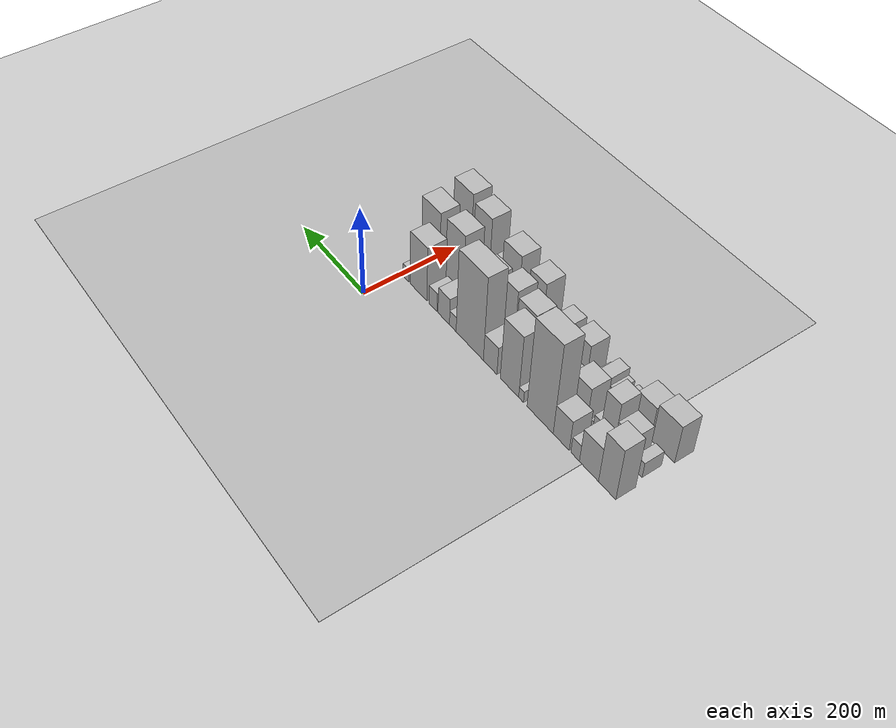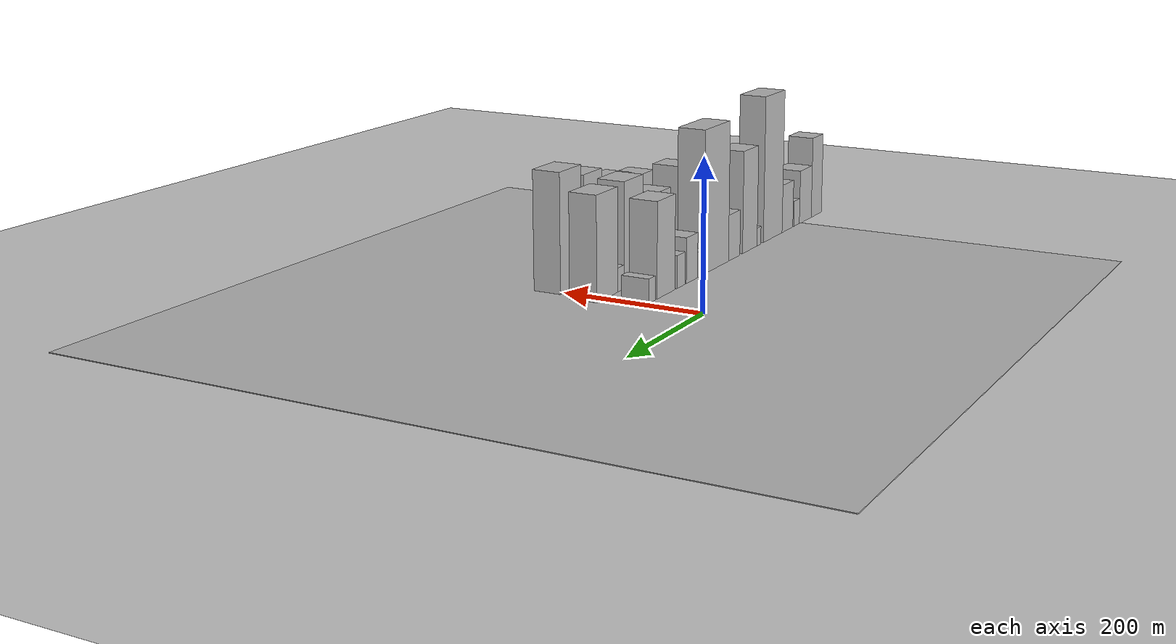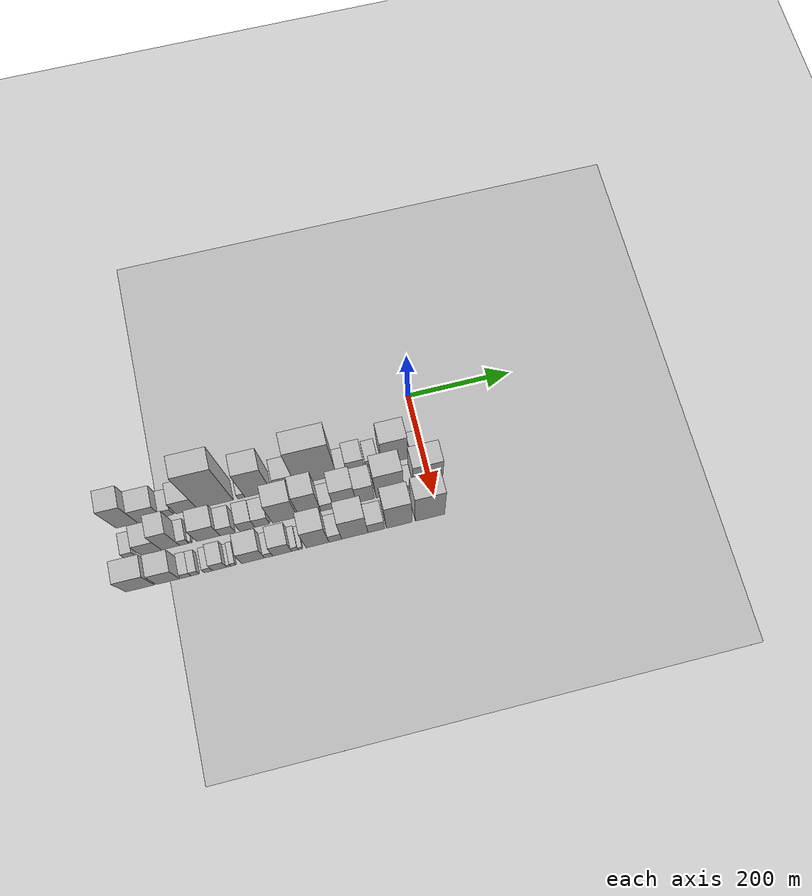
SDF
<sdf version="1.6">
 <world name="default">
  <include><name>ground_plane_1</name><uri>model://HANNAS_ground_plane</uri></include>
  <include>
   <name>ground_plane_2</name>
   <uri>model://HANNAS_ground_plane</uri>
   <pose>100 0 0  0 0 0</pose>
  </include>
  <model name="building_1">
   <static>1</static>
   <pose>100.0000 -559.7315 0 0.000000 0.000000 0.000000</pose>
   <link name="link">
    <pose>0 0 61.50 0 0 0</pose>
    <collision name="collision"><geometry><box><size>40.0000 40.5371 123.0000</size></box></geometry></collision>
    <visual name="visual">
     <cast_shadows>0</cast_shadows>
     <geometry><box><size>40.0000 40.5371 123.0000</size></box></geometry>
     <material>
      <script>
       <uri>model://HANNAS_wall/materials/scripts</uri>
       <uri>model://HANNAS_wall/materials/textures</uri>
       <name>vrc/HANNAS_wall</name>
      </script>
     </material>
    </visual>
   </link>
  </model>
  <model name="building_2">
   <static>1</static>
   <pose>100.0000 -516.5617 0 0.000000 0.000000 0.000000</pose>
   <link name="link">
    <pose>0 0 40.50 0 0 0</pose>
    <collision name="collision"><geometry><box><size>40.0000 45.8025 81.0000</size></box></geometry></collision>
    <visual name="visual">
     <cast_shadows>0</cast_shadows>
     <geometry><box><size>40.0000 45.8025 81.0000</size></box></geometry>
     <material>
      <script>
       <uri>model://HANNAS_wall/materials/scripts</uri>
       <uri>model://HANNAS_wall/materials/textures</uri>
       <name>vrc/HANNAS_wall</name>
      </script>
     </material>
    </visual>
   </link>
  </model>
  <model name="building_3">
   <static>1</static>
   <pose>100.0000 -483.2042 0 0.000000 0.000000 0.000000</pose>
   <link name="link">
    <pose>0 0 19.50 0 0 0</pose>
    <collision name="collision"><geometry><box><size>40.0000 20.9124 39.0000</size></box></geometry></collision>
    <visual name="visual">
     <cast_shadows>0</cast_shadows>
     <geometry><box><size>40.0000 20.9124 39.0000</size></box></geometry>
     <material>
      <script>
       <uri>model://HANNAS_wall/materials/scripts</uri>
       <uri>model://HANNAS_wall/materials/textures</uri>
       <name>vrc/HANNAS_wall</name>
      </script>
     </material>
    </visual>
   </link>
  </model>
  <model name="building_4">
   <static>1</static>
   <pose>100.0000 -448.7653 0 0.000000 0.000000 0.000000</pose>
   <link name="link">
    <pose>0 0 36.00 0 0 0</pose>
    <collision name="collision"><geometry><box><size>40.0000 39.9656 72.0000</size></box></geometry></collision>
    <visual name="visual">
     <cast_shadows>0</cast_shadows>
     <geometry><box><size>40.0000 39.9656 72.0000</size></box></geometry>
     <material>
      <script>
       <uri>model://HANNAS_wall/materials/scripts</uri>
       <uri>model://HANNAS_wall/materials/textures</uri>
       <name>vrc/HANNAS_wall</name>
      </script>
     </material>
    </visual>
   </link>
  </model>
  <model name="building_5">
   <static>1</static>
   <pose>100.0000 -395.1472 0 0.000000 0.000000 0.000000</pose>
   <link name="link">
    <pose>0 0 106.50 0 0 0</pose>
    <collision name="collision"><geometry><box><size>40.0000 67.2705 213.0000</size></box></geometry></collision>
    <visual name="visual">
     <cast_shadows>0</cast_shadows>
     <geometry><box><size>40.0000 67.2705 213.0000</size></box></geometry>
     <material>
      <script>
       <uri>model://HANNAS_wall/materials/scripts</uri>
       <uri>model://HANNAS_wall/materials/textures</uri>
       <name>vrc/HANNAS_wall</name>
      </script>
     </material>
    </visual>
   </link>
  </model>
  <model name="building_6">
   <static>1</static>
   <pose>100.0000 -346.0317 0 0.000000 0.000000 0.000000</pose>
   <link name="link">
    <pose>0 0 13.50 0 0 0</pose>
    <collision name="collision"><geometry><box><size>40.0000 12.9604 27.0000</size></box></geometry></collision>
    <visual name="visual">
     <cast_shadows>0</cast_shadows>
     <geometry><box><size>40.0000 12.9604 27.0000</size></box></geometry>
     <material>
      <script>
       <uri>model://HANNAS_wall/materials/scripts</uri>
       <uri>model://HANNAS_wall/materials/textures</uri>
       <name>vrc/HANNAS_wall</name>
      </script>
     </material>
    </visual>
   </link>
  </model>
  <model name="building_7">
   <static>1</static>
   <pose>100.0000 -314.8687 0 0.000000 0.000000 0.000000</pose>
   <link name="link">
    <pose>0 0 73.50 0 0 0</pose>
    <collision name="collision"><geometry><box><size>40.0000 49.3657 147.0000</size></box></geometry></collision>
    <visual name="visual">
     <cast_shadows>0</cast_shadows>
     <geometry><box><size>40.0000 49.3657 147.0000</size></box></geometry>
     <material>
      <script>
       <uri>model://HANNAS_wall/materials/scripts</uri>
       <uri>model://HANNAS_wall/materials/textures</uri>
       <name>vrc/HANNAS_wall</name>
      </script>
     </material>
    </visual>
   </link>
  </model>
  <model name="building_8">
   <static>1</static>
   <pose>100.0000 -262.5268 0 0.000000 0.000000 0.000000</pose>
   <link name="link">
    <pose>0 0 33.00 0 0 0</pose>
    <collision name="collision"><geometry><box><size>40.0000 37.3182 66.0000</size></box></geometry></collision>
    <visual name="visual">
     <cast_shadows>0</cast_shadows>
     <geometry><box><size>40.0000 37.3182 66.0000</size></box></geometry>
     <material>
      <script>
       <uri>model://HANNAS_wall/materials/scripts</uri>
       <uri>model://HANNAS_wall/materials/textures</uri>
       <name>vrc/HANNAS_wall</name>
      </script>
     </material>
    </visual>
   </link>
  </model>
  <model name="building_9">
   <static>1</static>
   <pose>100.0000 -205.1565 0 0.000000 0.000000 0.000000</pose>
   <link name="link">
    <pose>0 0 99.00 0 0 0</pose>
    <collision name="collision"><geometry><box><size>40.0000 77.4223 198.0000</size></box></geometry></collision>
    <visual name="visual">
     <cast_shadows>0</cast_shadows>
     <geometry><box><size>40.0000 77.4223 198.0000</size></box></geometry>
     <material>
      <script>
       <uri>model://HANNAS_wall/materials/scripts</uri>
       <uri>model://HANNAS_wall/materials/textures</uri>
       <name>vrc/HANNAS_wall</name>
      </script>
     </material>
    </visual>
   </link>
  </model>
  <model name="building_10">
   <static>1</static>
   <pose>100.0000 -156.7581 0 0.000000 0.000000 0.000000</pose>
   <link name="link">
    <pose>0 0 18.00 0 0 0</pose>
    <collision name="collision"><geometry><box><size>40.0000 19.3747 36.0000</size></box></geometry></collision>
    <visual name="visual">
     <cast_shadows>0</cast_shadows>
     <geometry><box><size>40.0000 19.3747 36.0000</size></box></geometry>
     <material>
      <script>
       <uri>model://HANNAS_wall/materials/scripts</uri>
       <uri>model://HANNAS_wall/materials/textures</uri>
       <name>vrc/HANNAS_wall</name>
      </script>
     </material>
    </visual>
   </link>
  </model>
  <model name="building_11">
   <static>1</static>
   <pose>100.0000 -130.1553 0 0.000000 0.000000 0.000000</pose>
   <link name="link">
    <pose>0 0 31.50 0 0 0</pose>
    <collision name="collision"><geometry><box><size>40.0000 33.8308 63.0000</size></box></geometry></collision>
    <visual name="visual">
     <cast_shadows>0</cast_shadows>
     <geometry><box><size>40.0000 33.8308 63.0000</size></box></geometry>
     <material>
      <script>
       <uri>model://HANNAS_wall/materials/scripts</uri>
       <uri>model://HANNAS_wall/materials/textures</uri>
       <name>vrc/HANNAS_wall</name>
      </script>
     </material>
    </visual>
   </link>
  </model>
  <model name="building_12">
   <static>1</static>
   <pose>100.0000 -98.2092 0 0.000000 0.000000 0.000000</pose>
   <link name="link">
    <pose>0 0 22.50 0 0 0</pose>
    <collision name="collision"><geometry><box><size>40.0000 24.0616 45.0000</size></box></geometry></collision>
    <visual name="visual">
     <cast_shadows>0</cast_shadows>
     <geometry><box><size>40.0000 24.0616 45.0000</size></box></geometry>
     <material>
      <script>
       <uri>model://HANNAS_wall/materials/scripts</uri>
       <uri>model://HANNAS_wall/materials/textures</uri>
       <name>vrc/HANNAS_wall</name>
      </script>
     </material>
    </visual>
   </link>
  </model>
  <model name="building_13">
   <static>1</static>
   <pose>100.0000 -54.8685 0 0.000000 0.000000 0.000000</pose>
   <link name="link">
    <pose>0 0 64.50 0 0 0</pose>
    <collision name="collision"><geometry><box><size>40.0000 50.6198 129.0000</size></box></geometry></collision>
    <visual name="visual">
     <cast_shadows>0</cast_shadows>
     <geometry><box><size>40.0000 50.6198 129.0000</size></box></geometry>
     <material>
      <script>
       <uri>model://HANNAS_wall/materials/scripts</uri>
       <uri>model://HANNAS_wall/materials/textures</uri>
       <name>vrc/HANNAS_wall</name>
      </script>
     </material>
    </visual>
   </link>
  </model>
  <model name="building_14">
   <static>1</static>
   <pose>100.0000 -15.6420 0 0.000000 0.000000 0.000000</pose>
   <link name="link">
    <pose>0 0 16.50 0 0 0</pose>
    <collision name="collision"><geometry><box><size>40.0000 17.8331 33.0000</size></box></geometry></collision>
    <visual name="visual">
     <cast_shadows>0</cast_shadows>
     <geometry><box><size>40.0000 17.8331 33.0000</size></box></geometry>
     <material>
      <script>
       <uri>model://HANNAS_wall/materials/scripts</uri>
       <uri>model://HANNAS_wall/materials/textures</uri>
       <name>vrc/HANNAS_wall</name>
      </script>
     </material>
    </visual>
   </link>
  </model>
  <model name="building_33">
   <static>1</static>
   <pose>160.0000 -562.0104 0 0.000000 0.000000 0.000000</pose>
   <link name="link">
    <pose>0 0 18.00 0 0 0</pose>
    <collision name="collision"><geometry><box><size>40.0000 19.9792 36.0000</size></box></geometry></collision>
    <visual name="visual">
     <cast_shadows>0</cast_shadows>
     <geometry><box><size>40.0000 19.9792 36.0000</size></box></geometry>
     <material>
      <script>
       <uri>model://HANNAS_wall/materials/scripts</uri>
       <uri>model://HANNAS_wall/materials/textures</uri>
       <name>vrc/HANNAS_wall</name>
      </script>
     </material>
    </visual>
   </link>
  </model>
  <model name="building_34">
   <static>1</static>
   <pose>160.0000 -524.8337 0 0.000000 0.000000 0.000000</pose>
   <link name="link">
    <pose>0 0 34.50 0 0 0</pose>
    <collision name="collision"><geometry><box><size>40.0000 38.3740 69.0000</size></box></geometry></collision>
    <visual name="visual">
     <cast_shadows>0</cast_shadows>
     <geometry><box><size>40.0000 38.3740 69.0000</size></box></geometry>
     <material>
      <script>
       <uri>model://HANNAS_wall/materials/scripts</uri>
       <uri>model://HANNAS_wall/materials/textures</uri>
       <name>vrc/HANNAS_wall</name>
      </script>
     </material>
    </visual>
   </link>
  </model>
  <model name="building_35">
   <static>1</static>
   <pose>160.0000 -488.9119 0 0.000000 0.000000 0.000000</pose>
   <link name="link">
    <pose>0 0 55.50 0 0 0</pose>
    <collision name="collision"><geometry><box><size>40.0000 33.4697 111.0000</size></box></geometry></collision>
    <visual name="visual">
     <cast_shadows>0</cast_shadows>
     <geometry><box><size>40.0000 33.4697 111.0000</size></box></geometry>
     <material>
      <script>
       <uri>model://HANNAS_wall/materials/scripts</uri>
       <uri>model://HANNAS_wall/materials/textures</uri>
       <name>vrc/HANNAS_wall</name>
      </script>
     </material>
    </visual>
   </link>
  </model>
  <model name="building_36">
   <static>1</static>
   <pose>160.0000 -463.6544 0 0.000000 0.000000 0.000000</pose>
   <link name="link">
    <pose>0 0 16.50 0 0 0</pose>
    <collision name="collision"><geometry><box><size>40.0000 17.0453 33.0000</size></box></geometry></collision>
    <visual name="visual">
     <cast_shadows>0</cast_shadows>
     <geometry><box><size>40.0000 17.0453 33.0000</size></box></geometry>
     <material>
      <script>
       <uri>model://HANNAS_wall/materials/scripts</uri>
       <uri>model://HANNAS_wall/materials/textures</uri>
       <name>vrc/HANNAS_wall</name>
      </script>
     </material>
    </visual>
   </link>
  </model>
  <model name="building_37">
   <static>1</static>
   <pose>160.0000 -451.9342 0 0.000000 0.000000 0.000000</pose>
   <link name="link">
    <pose>0 0 7.50 0 0 0</pose>
    <collision name="collision"><geometry><box><size>40.0000 6.3951 15.0000</size></box></geometry></collision>
    <visual name="visual">
     <cast_shadows>0</cast_shadows>
     <geometry><box><size>40.0000 6.3951 15.0000</size></box></geometry>
     <material>
      <script>
       <uri>model://HANNAS_wall/materials/scripts</uri>
       <uri>model://HANNAS_wall/materials/textures</uri>
       <name>vrc/HANNAS_wall</name>
      </script>
     </material>
    </visual>
   </link>
  </model>
  <model name="building_38">
   <static>1</static>
   <pose>160.0000 -418.7788 0 0.000000 0.000000 0.000000</pose>
   <link name="link">
    <pose>0 0 40.50 0 0 0</pose>
    <collision name="collision"><geometry><box><size>40.0000 43.9158 81.0000</size></box></geometry></collision>
    <visual name="visual">
     <cast_shadows>0</cast_shadows>
     <geometry><box><size>40.0000 43.9158 81.0000</size></box></geometry>
     <material>
      <script>
       <uri>model://HANNAS_wall/materials/scripts</uri>
       <uri>model://HANNAS_wall/materials/textures</uri>
       <name>vrc/HANNAS_wall</name>
      </script>
     </material>
    </visual>
   </link>
  </model>
  <model name="building_39">
   <static>1</static>
   <pose>160.0000 -383.0274 0 0.000000 0.000000 0.000000</pose>
   <link name="link">
    <pose>0 0 25.50 0 0 0</pose>
    <collision name="collision"><geometry><box><size>40.0000 27.5870 51.0000</size></box></geometry></collision>
    <visual name="visual">
     <cast_shadows>0</cast_shadows>
     <geometry><box><size>40.0000 27.5870 51.0000</size></box></geometry>
     <material>
      <script>
       <uri>model://HANNAS_wall/materials/scripts</uri>
       <uri>model://HANNAS_wall/materials/textures</uri>
       <name>vrc/HANNAS_wall</name>
      </script>
     </material>
    </visual>
   </link>
  </model>
  <model name="building_40">
   <static>1</static>
   <pose>160.0000 -346.9575 0 0.000000 0.000000 0.000000</pose>
   <link name="link">
    <pose>0 0 27.00 0 0 0</pose>
    <collision name="collision"><geometry><box><size>40.0000 28.5527 54.0000</size></box></geometry></collision>
    <visual name="visual">
     <cast_shadows>0</cast_shadows>
     <geometry><box><size>40.0000 28.5527 54.0000</size></box></geometry>
     <material>
      <script>
       <uri>model://HANNAS_wall/materials/scripts</uri>
       <uri>model://HANNAS_wall/materials/textures</uri>
       <name>vrc/HANNAS_wall</name>
      </script>
     </material>
    </visual>
   </link>
  </model>
  <model name="building_41">
   <static>1</static>
   <pose>160.0000 -318.8070 0 0.000000 0.000000 0.000000</pose>
   <link name="link">
    <pose>0 0 25.50 0 0 0</pose>
    <collision name="collision"><geometry><box><size>40.0000 27.7483 51.0000</size></box></geometry></collision>
    <visual name="visual">
     <cast_shadows>0</cast_shadows>
     <geometry><box><size>40.0000 27.7483 51.0000</size></box></geometry>
     <material>
      <script>
       <uri>model://HANNAS_wall/materials/scripts</uri>
       <uri>model://HANNAS_wall/materials/textures</uri>
       <name>vrc/HANNAS_wall</name>
      </script>
     </material>
    </visual>
   </link>
  </model>
  <model name="building_42">
   <static>1</static>
   <pose>160.0000 -276.2327 0 0.000000 0.000000 0.000000</pose>
   <link name="link">
    <pose>0 0 61.50 0 0 0</pose>
    <collision name="collision"><geometry><box><size>40.0000 47.4004 123.0000</size></box></geometry></collision>
    <visual name="visual">
     <cast_shadows>0</cast_shadows>
     <geometry><box><size>40.0000 47.4004 123.0000</size></box></geometry>
     <material>
      <script>
       <uri>model://HANNAS_wall/materials/scripts</uri>
       <uri>model://HANNAS_wall/materials/textures</uri>
       <name>vrc/HANNAS_wall</name>
      </script>
     </material>
    </visual>
   </link>
  </model>
  <model name="building_43">
   <static>1</static>
   <pose>160.0000 -229.0929 0 0.000000 0.000000 0.000000</pose>
   <link name="link">
    <pose>0 0 67.50 0 0 0</pose>
    <collision name="collision"><geometry><box><size>40.0000 40.8792 135.0000</size></box></geometry></collision>
    <visual name="visual">
     <cast_shadows>0</cast_shadows>
     <geometry><box><size>40.0000 40.8792 135.0000</size></box></geometry>
     <material>
      <script>
       <uri>model://HANNAS_wall/materials/scripts</uri>
       <uri>model://HANNAS_wall/materials/textures</uri>
       <name>vrc/HANNAS_wall</name>
      </script>
     </material>
    </visual>
   </link>
  </model>
  <model name="building_44">
   <static>1</static>
   <pose>160.0000 -196.4990 0 0.000000 0.000000 0.000000</pose>
   <link name="link">
    <pose>0 0 21.00 0 0 0</pose>
    <collision name="collision"><geometry><box><size>40.0000 24.3087 42.0000</size></box></geometry></collision>
    <visual name="visual">
     <cast_shadows>0</cast_shadows>
     <geometry><box><size>40.0000 24.3087 42.0000</size></box></geometry>
     <material>
      <script>
       <uri>model://HANNAS_wall/materials/scripts</uri>
       <uri>model://HANNAS_wall/materials/textures</uri>
       <name>vrc/HANNAS_wall</name>
      </script>
     </material>
    </visual>
   </link>
  </model>
  <model name="building_45">
   <static>1</static>
   <pose>160.0000 -163.3295 0 0.000000 0.000000 0.000000</pose>
   <link name="link">
    <pose>0 0 55.50 0 0 0</pose>
    <collision name="collision"><geometry><box><size>40.0000 42.0301 111.0000</size></box></geometry></collision>
    <visual name="visual">
     <cast_shadows>0</cast_shadows>
     <geometry><box><size>40.0000 42.0301 111.0000</size></box></geometry>
     <material>
      <script>
       <uri>model://HANNAS_wall/materials/scripts</uri>
       <uri>model://HANNAS_wall/materials/textures</uri>
       <name>vrc/HANNAS_wall</name>
      </script>
     </material>
    </visual>
   </link>
  </model>
  <model name="building_46">
   <static>1</static>
   <pose>160.0000 -125.0560 0 0.000000 0.000000 0.000000</pose>
   <link name="link">
    <pose>0 0 48.00 0 0 0</pose>
    <collision name="collision"><geometry><box><size>40.0000 34.5170 96.0000</size></box></geometry></collision>
    <visual name="visual">
     <cast_shadows>0</cast_shadows>
     <geometry><box><size>40.0000 34.5170 96.0000</size></box></geometry>
     <material>
      <script>
       <uri>model://HANNAS_wall/materials/scripts</uri>
       <uri>model://HANNAS_wall/materials/textures</uri>
       <name>vrc/HANNAS_wall</name>
      </script>
     </material>
    </visual>
   </link>
  </model>
  <model name="building_47">
   <static>1</static>
   <pose>160.0000 -78.4574 0 0.000000 0.000000 0.000000</pose>
   <link name="link">
    <pose>0 0 72.00 0 0 0</pose>
    <collision name="collision"><geometry><box><size>40.0000 52.6801 144.0000</size></box></geometry></collision>
    <visual name="visual">
     <cast_shadows>0</cast_shadows>
     <geometry><box><size>40.0000 52.6801 144.0000</size></box></geometry>
     <material>
      <script>
       <uri>model://HANNAS_wall/materials/scripts</uri>
       <uri>model://HANNAS_wall/materials/textures</uri>
       <name>vrc/HANNAS_wall</name>
      </script>
     </material>
    </visual>
   </link>
  </model>
  <model name="building_48">
   <static>1</static>
   <pose>160.0000 -43.1201 0 0.000000 0.000000 0.000000</pose>
   <link name="link">
    <pose>0 0 16.50 0 0 0</pose>
    <collision name="collision"><geometry><box><size>40.0000 17.9946 33.0000</size></box></geometry></collision>
    <visual name="visual">
     <cast_shadows>0</cast_shadows>
     <geometry><box><size>40.0000 17.9946 33.0000</size></box></geometry>
     <material>
      <script>
       <uri>model://HANNAS_wall/materials/scripts</uri>
       <uri>model://HANNAS_wall/materials/textures</uri>
       <name>vrc/HANNAS_wall</name>
      </script>
     </material>
    </visual>
   </link>
  </model>
  <model name="building_49">
   <static>1</static>
   <pose>160.0000 -6.3878 0 0.000000 0.000000 0.000000</pose>
   <link name="link">
    <pose>0 0 70.50 0 0 0</pose>
    <collision name="collision"><geometry><box><size>40.0000 55.4698 141.0000</size></box></geometry></collision>
    <visual name="visual">
     <cast_shadows>0</cast_shadows>
     <geometry><box><size>40.0000 55.4698 141.0000</size></box></geometry>
     <material>
      <script>
       <uri>model://HANNAS_wall/materials/scripts</uri>
       <uri>model://HANNAS_wall/materials/textures</uri>
       <name>vrc/HANNAS_wall</name>
      </script>
     </material>
    </visual>
   </link>
  </model>
  <model name="building_68">
   <static>1</static>
   <pose>220.0000 -553.9284 0 0.000000 0.000000 0.000000</pose>
   <link name="link">
    <pose>0 0 45.00 0 0 0</pose>
    <collision name="collision"><geometry><box><size>40.0000 52.1432 90.0000</size></box></geometry></collision>
    <visual name="visual">
     <cast_shadows>0</cast_shadows>
     <geometry><box><size>40.0000 52.1432 90.0000</size></box></geometry>
     <material>
      <script>
       <uri>model://HANNAS_wall/materials/scripts</uri>
       <uri>model://HANNAS_wall/materials/textures</uri>
       <name>vrc/HANNAS_wall</name>
      </script>
     </material>
    </visual>
   </link>
  </model>
  <model name="building_69">
   <static>1</static>
   <pose>220.0000 -503.6230 0 0.000000 0.000000 0.000000</pose>
   <link name="link">
    <pose>0 0 39.00 0 0 0</pose>
    <collision name="collision"><geometry><box><size>40.0000 42.4677 78.0000</size></box></geometry></collision>
    <visual name="visual">
     <cast_shadows>0</cast_shadows>
     <geometry><box><size>40.0000 42.4677 78.0000</size></box></geometry>
     <material>
      <script>
       <uri>model://HANNAS_wall/materials/scripts</uri>
       <uri>model://HANNAS_wall/materials/textures</uri>
       <name>vrc/HANNAS_wall</name>
      </script>
     </material>
    </visual>
   </link>
  </model>
  <model name="building_70">
   <static>1</static>
   <pose>220.0000 -469.8464 0 0.000000 0.000000 0.000000</pose>
   <link name="link">
    <pose>0 0 15.00 0 0 0</pose>
    <collision name="collision"><geometry><box><size>40.0000 17.0855 30.0000</size></box></geometry></collision>
    <visual name="visual">
     <cast_shadows>0</cast_shadows>
     <geometry><box><size>40.0000 17.0855 30.0000</size></box></geometry>
     <material>
      <script>
       <uri>model://HANNAS_wall/materials/scripts</uri>
       <uri>model://HANNAS_wall/materials/textures</uri>
       <name>vrc/HANNAS_wall</name>
      </script>
     </material>
    </visual>
   </link>
  </model>
  <model name="building_71">
   <static>1</static>
   <pose>220.0000 -453.7935 0 0.000000 0.000000 0.000000</pose>
   <link name="link">
    <pose>0 0 15.00 0 0 0</pose>
    <collision name="collision"><geometry><box><size>40.0000 15.0203 30.0000</size></box></geometry></collision>
    <visual name="visual">
     <cast_shadows>0</cast_shadows>
     <geometry><box><size>40.0000 15.0203 30.0000</size></box></geometry>
     <material>
      <script>
       <uri>model://HANNAS_wall/materials/scripts</uri>
       <uri>model://HANNAS_wall/materials/textures</uri>
       <name>vrc/HANNAS_wall</name>
      </script>
     </material>
    </visual>
   </link>
  </model>
  <model name="building_72">
   <static>1</static>
   <pose>220.0000 -429.7526 0 0.000000 0.000000 0.000000</pose>
   <link name="link">
    <pose>0 0 15.00 0 0 0</pose>
    <collision name="collision"><geometry><box><size>40.0000 15.0614 30.0000</size></box></geometry></collision>
    <visual name="visual">
     <cast_shadows>0</cast_shadows>
     <geometry><box><size>40.0000 15.0614 30.0000</size></box></geometry>
     <material>
      <script>
       <uri>model://HANNAS_wall/materials/scripts</uri>
       <uri>model://HANNAS_wall/materials/textures</uri>
       <name>vrc/HANNAS_wall</name>
      </script>
     </material>
    </visual>
   </link>
  </model>
  <model name="building_73">
   <static>1</static>
   <pose>220.0000 -409.1234 0 0.000000 0.000000 0.000000</pose>
   <link name="link">
    <pose>0 0 24.00 0 0 0</pose>
    <collision name="collision"><geometry><box><size>40.0000 26.1971 48.0000</size></box></geometry></collision>
    <visual name="visual">
     <cast_shadows>0</cast_shadows>
     <geometry><box><size>40.0000 26.1971 48.0000</size></box></geometry>
     <material>
      <script>
       <uri>model://HANNAS_wall/materials/scripts</uri>
       <uri>model://HANNAS_wall/materials/textures</uri>
       <name>vrc/HANNAS_wall</name>
      </script>
     </material>
    </visual>
   </link>
  </model>
  <model name="building_74">
   <static>1</static>
   <pose>220.0000 -392.4115 0 0.000000 0.000000 0.000000</pose>
   <link name="link">
    <pose>0 0 7.50 0 0 0</pose>
    <collision name="collision"><geometry><box><size>40.0000 7.2267 15.0000</size></box></geometry></collision>
    <visual name="visual">
     <cast_shadows>0</cast_shadows>
     <geometry><box><size>40.0000 7.2267 15.0000</size></box></geometry>
     <material>
      <script>
       <uri>model://HANNAS_wall/materials/scripts</uri>
       <uri>model://HANNAS_wall/materials/textures</uri>
       <name>vrc/HANNAS_wall</name>
      </script>
     </material>
    </visual>
   </link>
  </model>
  <model name="building_75">
   <static>1</static>
   <pose>220.0000 -383.7509 0 0.000000 0.000000 0.000000</pose>
   <link name="link">
    <pose>0 0 10.50 0 0 0</pose>
    <collision name="collision"><geometry><box><size>40.0000 10.0944 21.0000</size></box></geometry></collision>
    <visual name="visual">
     <cast_shadows>0</cast_shadows>
     <geometry><box><size>40.0000 10.0944 21.0000</size></box></geometry>
     <material>
      <script>
       <uri>model://HANNAS_wall/materials/scripts</uri>
       <uri>model://HANNAS_wall/materials/textures</uri>
       <name>vrc/HANNAS_wall</name>
      </script>
     </material>
    </visual>
   </link>
  </model>
  <model name="building_76">
   <static>1</static>
   <pose>220.0000 -347.6283 0 0.000000 0.000000 0.000000</pose>
   <link name="link">
    <pose>0 0 37.50 0 0 0</pose>
    <collision name="collision"><geometry><box><size>40.0000 42.1508 75.0000</size></box></geometry></collision>
    <visual name="visual">
     <cast_shadows>0</cast_shadows>
     <geometry><box><size>40.0000 42.1508 75.0000</size></box></geometry>
     <material>
      <script>
       <uri>model://HANNAS_wall/materials/scripts</uri>
       <uri>model://HANNAS_wall/materials/textures</uri>
       <name>vrc/HANNAS_wall</name>
      </script>
     </material>
    </visual>
   </link>
  </model>
  <model name="building_77">
   <static>1</static>
   <pose>220.0000 -318.9751 0 0.000000 0.000000 0.000000</pose>
   <link name="link">
    <pose>0 0 15.00 0 0 0</pose>
    <collision name="collision"><geometry><box><size>40.0000 15.1555 30.0000</size></box></geometry></collision>
    <visual name="visual">
     <cast_shadows>0</cast_shadows>
     <geometry><box><size>40.0000 15.1555 30.0000</size></box></geometry>
     <material>
      <script>
       <uri>model://HANNAS_wall/materials/scripts</uri>
       <uri>model://HANNAS_wall/materials/textures</uri>
       <name>vrc/HANNAS_wall</name>
      </script>
     </material>
    </visual>
   </link>
  </model>
  <model name="building_78">
   <static>1</static>
   <pose>220.0000 -293.8705 0 0.000000 0.000000 0.000000</pose>
   <link name="link">
    <pose>0 0 34.50 0 0 0</pose>
    <collision name="collision"><geometry><box><size>40.0000 35.0538 69.0000</size></box></geometry></collision>
    <visual name="visual">
     <cast_shadows>0</cast_shadows>
     <geometry><box><size>40.0000 35.0538 69.0000</size></box></geometry>
     <material>
      <script>
       <uri>model://HANNAS_wall/materials/scripts</uri>
       <uri>model://HANNAS_wall/materials/textures</uri>
       <name>vrc/HANNAS_wall</name>
      </script>
     </material>
    </visual>
   </link>
  </model>
  <model name="building_79">
   <static>1</static>
   <pose>220.0000 -270.3643 0 0.000000 0.000000 0.000000</pose>
   <link name="link">
    <pose>0 0 13.50 0 0 0</pose>
    <collision name="collision"><geometry><box><size>40.0000 11.9587 27.0000</size></box></geometry></collision>
    <visual name="visual">
     <cast_shadows>0</cast_shadows>
     <geometry><box><size>40.0000 11.9587 27.0000</size></box></geometry>
     <material>
      <script>
       <uri>model://HANNAS_wall/materials/scripts</uri>
       <uri>model://HANNAS_wall/materials/textures</uri>
       <name>vrc/HANNAS_wall</name>
      </script>
     </material>
    </visual>
   </link>
  </model>
  <model name="building_80">
   <static>1</static>
   <pose>220.0000 -260.1292 0 0.000000 0.000000 0.000000</pose>
   <link name="link">
    <pose>0 0 9.00 0 0 0</pose>
    <collision name="collision"><geometry><box><size>40.0000 8.5115 18.0000</size></box></geometry></collision>
    <visual name="visual">
     <cast_shadows>0</cast_shadows>
     <geometry><box><size>40.0000 8.5115 18.0000</size></box></geometry>
     <material>
      <script>
       <uri>model://HANNAS_wall/materials/scripts</uri>
       <uri>model://HANNAS_wall/materials/textures</uri>
       <name>vrc/HANNAS_wall</name>
      </script>
     </material>
    </visual>
   </link>
  </model>
  <model name="building_81">
   <static>1</static>
   <pose>220.0000 -228.4484 0 0.000000 0.000000 0.000000</pose>
   <link name="link">
    <pose>0 0 58.50 0 0 0</pose>
    <collision name="collision"><geometry><box><size>40.0000 42.8501 117.0000</size></box></geometry></collision>
    <visual name="visual">
     <cast_shadows>0</cast_shadows>
     <geometry><box><size>40.0000 42.8501 117.0000</size></box></geometry>
     <material>
      <script>
       <uri>model://HANNAS_wall/materials/scripts</uri>
       <uri>model://HANNAS_wall/materials/textures</uri>
       <name>vrc/HANNAS_wall</name>
      </script>
     </material>
    </visual>
   </link>
  </model>
  <model name="building_82">
   <static>1</static>
   <pose>220.0000 -195.1065 0 0.000000 0.000000 0.000000</pose>
   <link name="link">
    <pose>0 0 22.50 0 0 0</pose>
    <collision name="collision"><geometry><box><size>40.0000 23.8337 45.0000</size></box></geometry></collision>
    <visual name="visual">
     <cast_shadows>0</cast_shadows>
     <geometry><box><size>40.0000 23.8337 45.0000</size></box></geometry>
     <material>
      <script>
       <uri>model://HANNAS_wall/materials/scripts</uri>
       <uri>model://HANNAS_wall/materials/textures</uri>
       <name>vrc/HANNAS_wall</name>
      </script>
     </material>
    </visual>
   </link>
  </model>
  <model name="building_83">
   <static>1</static>
   <pose>220.0000 -158.6092 0 0.000000 0.000000 0.000000</pose>
   <link name="link">
    <pose>0 0 63.00 0 0 0</pose>
    <collision name="collision"><geometry><box><size>40.0000 49.1609 126.0000</size></box></geometry></collision>
    <visual name="visual">
     <cast_shadows>0</cast_shadows>
     <geometry><box><size>40.0000 49.1609 126.0000</size></box></geometry>
     <material>
      <script>
       <uri>model://HANNAS_wall/materials/scripts</uri>
       <uri>model://HANNAS_wall/materials/textures</uri>
       <name>vrc/HANNAS_wall</name>
      </script>
     </material>
    </visual>
   </link>
  </model>
  <model name="building_84">
   <static>1</static>
   <pose>220.0000 -118.3661 0 0.000000 0.000000 0.000000</pose>
   <link name="link">
    <pose>0 0 30.00 0 0 0</pose>
    <collision name="collision"><geometry><box><size>40.0000 31.3252 60.0000</size></box></geometry></collision>
    <visual name="visual">
     <cast_shadows>0</cast_shadows>
     <geometry><box><size>40.0000 31.3252 60.0000</size></box></geometry>
     <material>
      <script>
       <uri>model://HANNAS_wall/materials/scripts</uri>
       <uri>model://HANNAS_wall/materials/textures</uri>
       <name>vrc/HANNAS_wall</name>
      </script>
     </material>
    </visual>
   </link>
  </model>
  <model name="building_85">
   <static>1</static>
   <pose>220.0000 -75.4554 0 0.000000 0.000000 0.000000</pose>
   <link name="link">
    <pose>0 0 73.50 0 0 0</pose>
    <collision name="collision"><geometry><box><size>40.0000 48.4963 147.0000</size></box></geometry></collision>
    <visual name="visual">
     <cast_shadows>0</cast_shadows>
     <geometry><box><size>40.0000 48.4963 147.0000</size></box></geometry>
     <material>
      <script>
       <uri>model://HANNAS_wall/materials/scripts</uri>
       <uri>model://HANNAS_wall/materials/textures</uri>
       <name>vrc/HANNAS_wall</name>
      </script>
     </material>
    </visual>
   </link>
  </model>
  <model name="building_86">
   <static>1</static>
   <pose>220.0000 -17.5854 0 0.000000 0.000000 0.000000</pose>
   <link name="link">
    <pose>0 0 81.00 0 0 0</pose>
    <collision name="collision"><geometry><box><size>40.0000 55.2437 162.0000</size></box></geometry></collision>
    <visual name="visual">
     <cast_shadows>0</cast_shadows>
     <geometry><box><size>40.0000 55.2437 162.0000</size></box></geometry>
     <material>
      <script>
       <uri>model://HANNAS_wall/materials/scripts</uri>
       <uri>model://HANNAS_wall/materials/textures</uri>
       <name>vrc/HANNAS_wall</name>
      </script>
     </material>
    </visual>
   </link>
  </model>
 </world>
</sdf>
